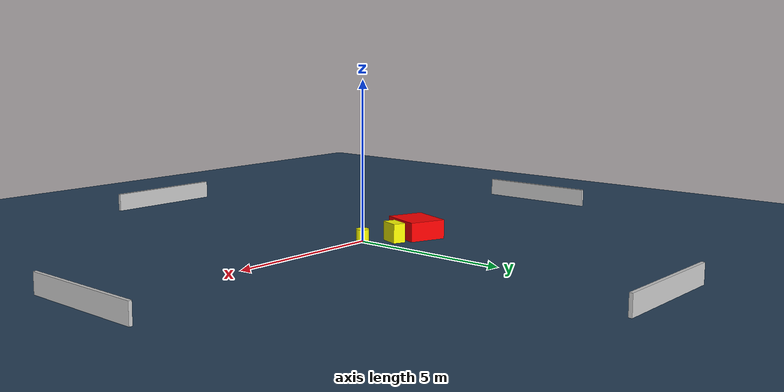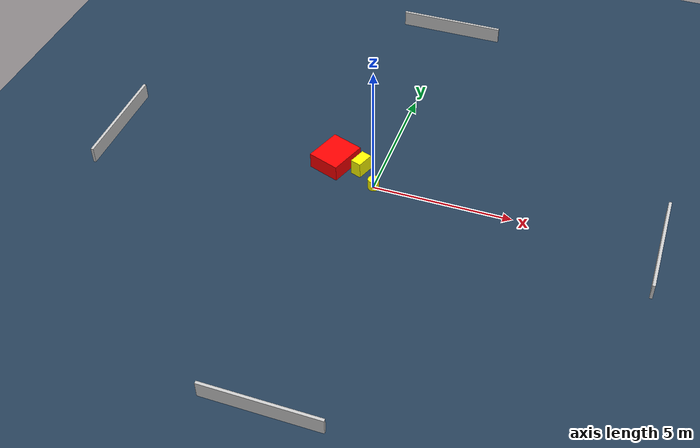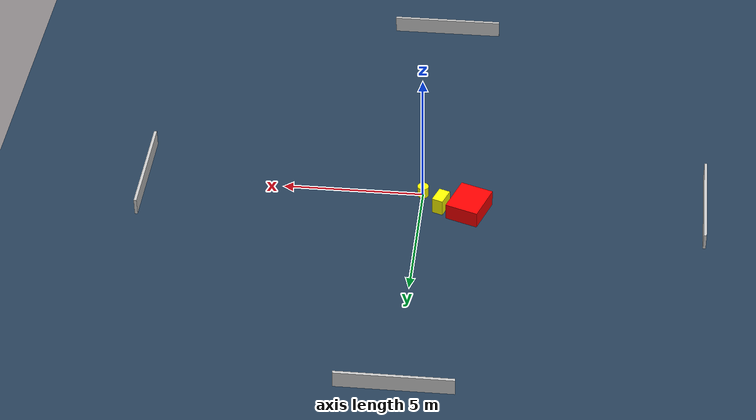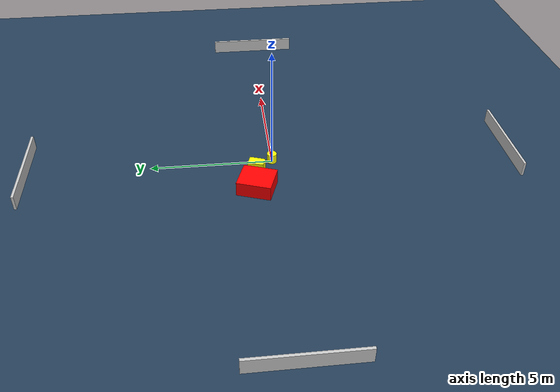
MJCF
<?xml version="1.0" ?>
<mujoco model="generated_environment">
  <option timestep="0.01" integrator="RK4" cone="elliptic"/>
  <default>
    <geom density="1"/>
  </default>
  <asset>
    <texture builtin="gradient" height="3072" name="skybox" rgb1="0.3 0.5 0.7" rgb2="0 0 0" type="skybox" width="512"/>
    <texture builtin="checker" height="300" name="groundplane" rgb1="0.2 0.3 0.4" rgb2="0.1 0.2 0.3" type="2d" width="300"/>
    <material name="groundplane" reflectance="0.2" texrepeat="5 5" texture="groundplane"/>
  </asset>
  <worldbody>
    <light dir="0 0 -1" directional="true" pos="0 0 1.5"/>
    <geom condim="3" friction="0.5 0.005 0.001" material="groundplane" name="floor" pos="0 0 0" size="0 0 0.05" type="plane"/>
    <body name="walls">
      <geom name="wall_1" condim="4" pos="-10.0 0.0 0.3" rgba="0.800000011920929 0.800000011920929 0.800000011920929 1.0" size="0.05 2.0 0.3" type="box"/>
      <geom name="wall_2" condim="4" pos="10.0 0.0 0.3" rgba="0.800000011920929 0.800000011920929 0.800000011920929 1.0" size="0.05 2.0 0.3" type="box"/>
      <geom name="wall_3" condim="4" pos="0.0 -10.0 0.3" rgba="0.800000011920929 0.800000011920929 0.800000011920929 1.0" size="2.0 0.05 0.3" type="box"/>
      <geom name="wall_4" condim="4" pos="0.0 10.0 0.3" rgba="0.800000011920929 0.800000011920929 0.800000011920929 1.0" size="2.0 0.05 0.3" type="box"/>
    </body>
    <body name="robot">
      <joint name="joint_x" type="slide" pos="0 0 0" axis="1 0 0"/>
      <joint name="joint_y" type="slide" pos="0 0 0" axis="0 1 0"/>
      <geom name="robot" type="cylinder" pos="0.0 0.0 0.2" size="0.2 0.2 0.0" mass="5.0" friction="1.0 0.005 0.0001" condim="4" rgba="1.0 1.0 0.0 1.0"/>
    </body>
    <body name="obstacle_1_movable">
      <geom name="obstacle_1_movable" condim="4" pos="-0.7006120350733027 0.6905455436613578 0.3" euler="0 0 250.0559886947174" friction="0.0 0.005 0.001" rgba="1.0 1.0 0.0 1.0" size="0.3188116012284848 0.20115468275277856 0.3" type="box" mass="0.1"/>
      <joint type="free"/>
    </body>
    <body name="obstacle_2_static">
      <geom name="obstacle_2_static" condim="4" pos="-1.7037403421563573 0.7575766881395055 0.3" euler="0 0 340.5667652623077" friction="0.0 0.005 0.001" rgba="1.0 0.0 0.0 1.0" size="0.5965764794271473 0.6908252581968866 0.3" type="box"/>
    </body>
  </worldbody>
  <actuator>
    <motor name="actuator_x" joint="joint_x" gear="1" ctrlrange="-1 1"/>
    <motor name="actuator_y" joint="joint_y" gear="1" ctrlrange="-1 1"/>
  </actuator>
</mujoco>
